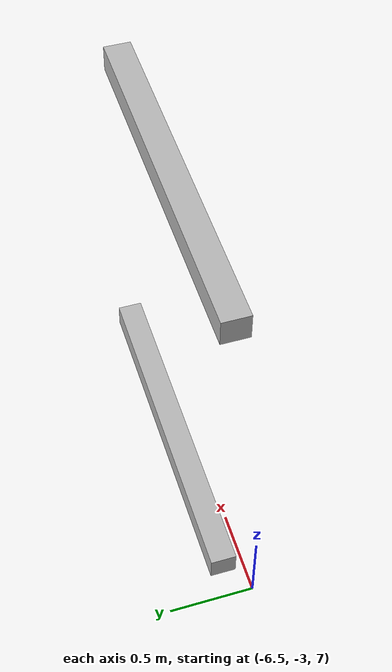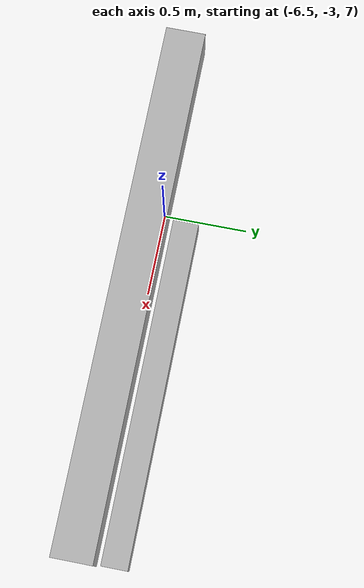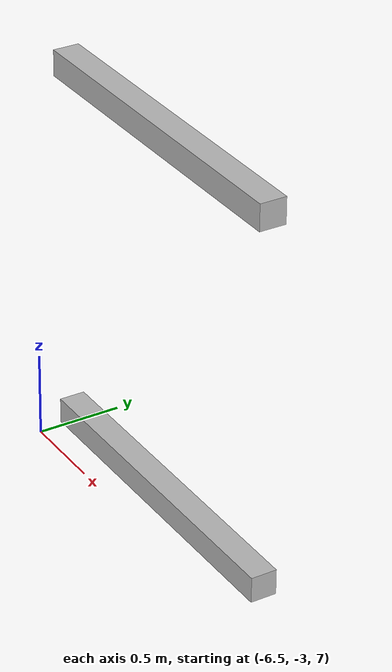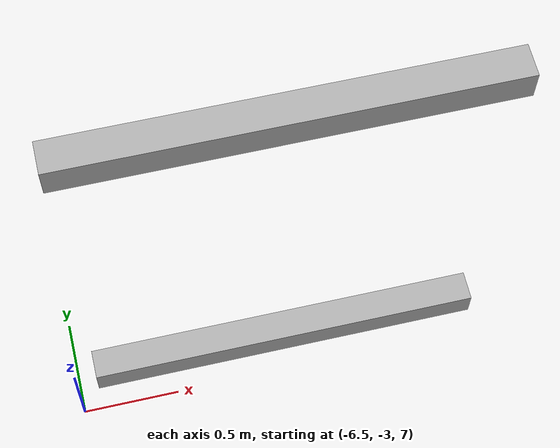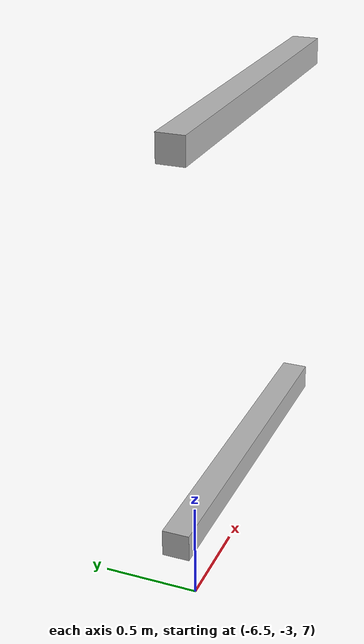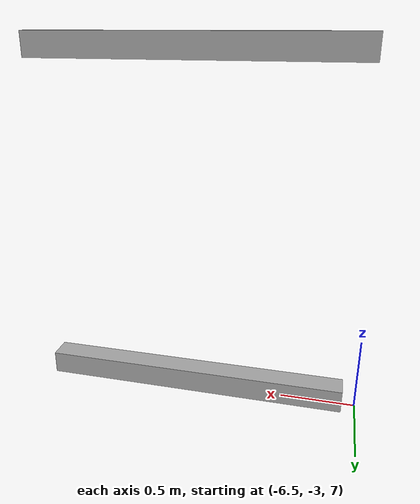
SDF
<sdf version="1.7">
 <world name="default">
  <model name="orthogonal_747_2.000.15_TS">
   <static>1</static>
   <link name="x_link_4_1_0">
    <inertial>
     <mass>1</mass>
     <inertia>
      <ixx>0.166667</ixx>
      <ixy>0</ixy>
      <ixz>0</ixz>
      <iyy>0.166667</iyy>
      <iyz>0</iyz>
      <izz>0.166667</izz>
     </inertia>
    </inertial>
    <pose>1.075 2.15 9.675 0 -0 0</pose>
    <visual name="visual_0">
     <laser_retro>3676</laser_retro>
     <geometry><box><size>2 1e-06 0.15</size></box></geometry>
     <material>
      <script><name>Gazebo/Grey</name><uri>file://media/materials/scripts/gazebo.material</uri></script>
      <shader type="pixel"><normal_map>__default__</normal_map></shader>
      <ambient>0.678 0.498 0.659 1</ambient>
      <diffuse>0.7 0.7 0.7 1</diffuse>
      <specular>0.01 0.01 0.01 1</specular>
      <emissive>0 0 0 1</emissive>
     </material>
     <pose>0 -0.075 0 0 -0 0</pose>
     <transparency>1</transparency>
    </visual>
    <visual name="visual_1">
     <laser_retro>3677</laser_retro>
     <geometry><box><size>2 1e-06 0.15</size></box></geometry>
     <material>
      <script><name>Gazebo/Grey</name><uri>file://media/materials/scripts/gazebo.material</uri></script>
      <shader type="pixel"><normal_map>__default__</normal_map></shader>
      <ambient>0.447 0.624 0.812 1</ambient>
      <diffuse>0.7 0.7 0.7 1</diffuse>
      <specular>0.01 0.01 0.01 1</specular>
      <emissive>0 0 0 1</emissive>
     </material>
     <pose>0 0.075 0 0 -0 0</pose>
     <transparency>1</transparency>
    </visual>
    <visual name="visual_2">
     <laser_retro>3678</laser_retro>
     <geometry><box><size>2 0.15 1e-06</size></box></geometry>
     <material>
      <script><name>Gazebo/Grey</name><uri>file://media/materials/scripts/gazebo.material</uri></script>
      <shader type="pixel"><normal_map>__default__</normal_map></shader>
      <ambient>0.988 0.686 0.243 1</ambient>
      <diffuse>0.7 0.7 0.7 1</diffuse>
      <specular>0.01 0.01 0.01 1</specular>
      <emissive>0 0 0 1</emissive>
     </material>
     <pose>0 0 -0.075 0 -0 0</pose>
     <transparency>1</transparency>
    </visual>
    <visual name="visual_3">
     <laser_retro>3679</laser_retro>
     <geometry><box><size>1e-06 0.15 0.15</size></box></geometry>
     <material>
      <script><name>Gazebo/Grey</name><uri>file://media/materials/scripts/gazebo.material</uri></script>
      <shader type="pixel"><normal_map>__default__</normal_map></shader>
      <ambient>0.988 0.914 0.31 1</ambient>
      <diffuse>0.7 0.7 0.7 1</diffuse>
      <specular>0.01 0.01 0.01 1</specular>
      <emissive>0 0 0 1</emissive>
     </material>
     <pose>1 0 0 0 -0 0</pose>
     <transparency>1</transparency>
    </visual>
    <visual name="visual_4">
     <laser_retro>3680</laser_retro>
     <geometry><box><size>2 0.15 1e-06</size></box></geometry>
     <material>
      <script><name>Gazebo/Grey</name><uri>file://media/materials/scripts/gazebo.material</uri></script>
      <shader type="pixel"><normal_map>__default__</normal_map></shader>
      <ambient>0.937 0.161 0.161 1</ambient>
      <diffuse>0.7 0.7 0.7 1</diffuse>
      <specular>0.01 0.01 0.01 1</specular>
      <emissive>0 0 0 1</emissive>
     </material>
     <pose>0 0 0.075 0 -0 0</pose>
     <transparency>1</transparency>
    </visual>
    <visual name="visual_5">
     <laser_retro>3681</laser_retro>
     <geometry><box><size>1e-06 0.15 0.15</size></box></geometry>
     <material>
      <script><name>Gazebo/Grey</name><uri>file://media/materials/scripts/gazebo.material</uri></script>
      <shader type="pixel"><normal_map>__default__</normal_map></shader>
      <ambient>0.541 0.886 0.204 1</ambient>
      <diffuse>0.7 0.7 0.7 1</diffuse>
      <specular>0.01 0.01 0.01 1</specular>
      <emissive>0 0 0 1</emissive>
     </material>
     <pose>-1 0 0 0 -0 0</pose>
     <transparency>1</transparency>
    </visual>
    <visual name="visual_texture">
     <geometry><box><size>1.9998 0.149985 0.149985</size></box></geometry>
     <material>
      <script>
       <uri>model://BASE_MODELS/simple_block_v2_textured/materials/scripts</uri>
       <uri>model://BASE_MODELS/simple_block_v2_textured/materials/textures</uri>
       <name>metal</name>
      </script>
     </material>
     <laser_retro>3682</laser_retro>
    </visual>
    <collision name="collision">
     <geometry><box><size>2 0.15 0.15</size></box></geometry>
     <surface>
      <friction>
       <ode><mu>1</mu><mu2>1</mu2><fdir1>0 0 0</fdir1><slip1>0</slip1><slip2>0</slip2></ode>
       <torsional>
        <coefficient>1</coefficient>
        <patch_radius>0</patch_radius>
        <surface_radius>0</surface_radius>
        <use_patch_radius>1</use_patch_radius>
        <ode><slip>0</slip></ode>
       </torsional>
      </friction>
      <bounce><restitution_coefficient>0</restitution_coefficient><threshold>1e+06</threshold></bounce>
      <contact>
       <collide_without_contact>0</collide_without_contact>
       <collide_without_contact_bitmask>1</collide_without_contact_bitmask>
       <collide_bitmask>1</collide_bitmask>
       <ode>
        <soft_cfm>0</soft_cfm>
        <soft_erp>0.2</soft_erp>
        <kp>1e+13</kp>
        <kd>1</kd>
        <max_vel>0.01</max_vel>
        <min_depth>0</min_depth>
       </ode>
       <bullet>
        <split_impulse>1</split_impulse>
        <split_impulse_penetration_threshold>-0.01</split_impulse_penetration_threshold>
        <soft_cfm>0</soft_cfm>
        <soft_erp>0.2</soft_erp>
        <kp>1e+13</kp>
        <kd>1</kd>
       </bullet>
      </contact>
     </surface>
    </collision>
   </link>
   <link name="x_link_5_1_0">
    <inertial>
     <mass>1</mass>
     <inertia>
      <ixx>0.166667</ixx>
      <ixy>0</ixy>
      <ixz>0</ixz>
      <iyy>0.166667</iyy>
      <iyz>0</iyz>
      <izz>0.166667</izz>
     </inertia>
    </inertial>
    <pose>1.075 2.15 11.825 0 -0 0</pose>
    <visual name="visual_0">
     <laser_retro>4579</laser_retro>
     <geometry><box><size>2 1e-06 0.15</size></box></geometry>
     <material>
      <script><name>Gazebo/Grey</name><uri>file://media/materials/scripts/gazebo.material</uri></script>
      <shader type="pixel"><normal_map>__default__</normal_map></shader>
      <ambient>0.678 0.498 0.659 1</ambient>
      <diffuse>0.7 0.7 0.7 1</diffuse>
      <specular>0.01 0.01 0.01 1</specular>
      <emissive>0 0 0 1</emissive>
     </material>
     <pose>0 -0.075 0 0 -0 0</pose>
     <transparency>1</transparency>
    </visual>
    <visual name="visual_1">
     <laser_retro>4580</laser_retro>
     <geometry><box><size>2 1e-06 0.15</size></box></geometry>
     <material>
      <script><name>Gazebo/Grey</name><uri>file://media/materials/scripts/gazebo.material</uri></script>
      <shader type="pixel"><normal_map>__default__</normal_map></shader>
      <ambient>0.447 0.624 0.812 1</ambient>
      <diffuse>0.7 0.7 0.7 1</diffuse>
      <specular>0.01 0.01 0.01 1</specular>
      <emissive>0 0 0 1</emissive>
     </material>
     <pose>0 0.075 0 0 -0 0</pose>
     <transparency>1</transparency>
    </visual>
    <visual name="visual_2">
     <laser_retro>4581</laser_retro>
     <geometry><box><size>2 0.15 1e-06</size></box></geometry>
     <material>
      <script><name>Gazebo/Grey</name><uri>file://media/materials/scripts/gazebo.material</uri></script>
      <shader type="pixel"><normal_map>__default__</normal_map></shader>
      <ambient>0.988 0.686 0.243 1</ambient>
      <diffuse>0.7 0.7 0.7 1</diffuse>
      <specular>0.01 0.01 0.01 1</specular>
      <emissive>0 0 0 1</emissive>
     </material>
     <pose>0 0 -0.075 0 -0 0</pose>
     <transparency>1</transparency>
    </visual>
    <visual name="visual_3">
     <laser_retro>4582</laser_retro>
     <geometry><box><size>1e-06 0.15 0.15</size></box></geometry>
     <material>
      <script><name>Gazebo/Grey</name><uri>file://media/materials/scripts/gazebo.material</uri></script>
      <shader type="pixel"><normal_map>__default__</normal_map></shader>
      <ambient>0.988 0.914 0.31 1</ambient>
      <diffuse>0.7 0.7 0.7 1</diffuse>
      <specular>0.01 0.01 0.01 1</specular>
      <emissive>0 0 0 1</emissive>
     </material>
     <pose>1 0 0 0 -0 0</pose>
     <transparency>1</transparency>
    </visual>
    <visual name="visual_4">
     <laser_retro>4583</laser_retro>
     <geometry><box><size>2 0.15 1e-06</size></box></geometry>
     <material>
      <script><name>Gazebo/Grey</name><uri>file://media/materials/scripts/gazebo.material</uri></script>
      <shader type="pixel"><normal_map>__default__</normal_map></shader>
      <ambient>0.937 0.161 0.161 1</ambient>
      <diffuse>0.7 0.7 0.7 1</diffuse>
      <specular>0.01 0.01 0.01 1</specular>
      <emissive>0 0 0 1</emissive>
     </material>
     <pose>0 0 0.075 0 -0 0</pose>
     <transparency>1</transparency>
    </visual>
    <visual name="visual_5">
     <laser_retro>4584</laser_retro>
     <geometry><box><size>1e-06 0.15 0.15</size></box></geometry>
     <material>
      <script><name>Gazebo/Grey</name><uri>file://media/materials/scripts/gazebo.material</uri></script>
      <shader type="pixel"><normal_map>__default__</normal_map></shader>
      <ambient>0.541 0.886 0.204 1</ambient>
      <diffuse>0.7 0.7 0.7 1</diffuse>
      <specular>0.01 0.01 0.01 1</specular>
      <emissive>0 0 0 1</emissive>
     </material>
     <pose>-1 0 0 0 -0 0</pose>
     <transparency>1</transparency>
    </visual>
    <visual name="visual_texture">
     <geometry><box><size>1.9998 0.149985 0.149985</size></box></geometry>
     <material>
      <script>
       <uri>model://BASE_MODELS/simple_block_v2_textured/materials/scripts</uri>
       <uri>model://BASE_MODELS/simple_block_v2_textured/materials/textures</uri>
       <name>metal</name>
      </script>
     </material>
     <laser_retro>4585</laser_retro>
    </visual>
    <collision name="collision">
     <geometry><box><size>2 0.15 0.15</size></box></geometry>
     <surface>
      <friction>
       <ode><mu>1</mu><mu2>1</mu2><fdir1>0 0 0</fdir1><slip1>0</slip1><slip2>0</slip2></ode>
       <torsional>
        <coefficient>1</coefficient>
        <patch_radius>0</patch_radius>
        <surface_radius>0</surface_radius>
        <use_patch_radius>1</use_patch_radius>
        <ode><slip>0</slip></ode>
       </torsional>
      </friction>
      <bounce><restitution_coefficient>0</restitution_coefficient><threshold>1e+06</threshold></bounce>
      <contact>
       <collide_without_contact>0</collide_without_contact>
       <collide_without_contact_bitmask>1</collide_without_contact_bitmask>
       <collide_bitmask>1</collide_bitmask>
       <ode>
        <soft_cfm>0</soft_cfm>
        <soft_erp>0.2</soft_erp>
        <kp>1e+13</kp>
        <kd>1</kd>
        <max_vel>0.01</max_vel>
        <min_depth>0</min_depth>
       </ode>
       <bullet>
        <split_impulse>1</split_impulse>
        <split_impulse_penetration_threshold>-0.01</split_impulse_penetration_threshold>
        <soft_cfm>0</soft_cfm>
        <soft_erp>0.2</soft_erp>
        <kp>1e+13</kp>
        <kd>1</kd>
       </bullet>
      </contact>
     </surface>
    </collision>
   </link>
   <pose>-6.47624 -5 -2.5 0 -0 0</pose>
  </model>
 </world>
</sdf>
